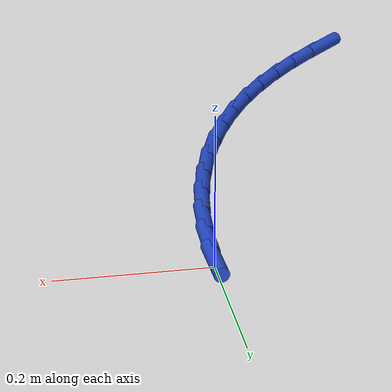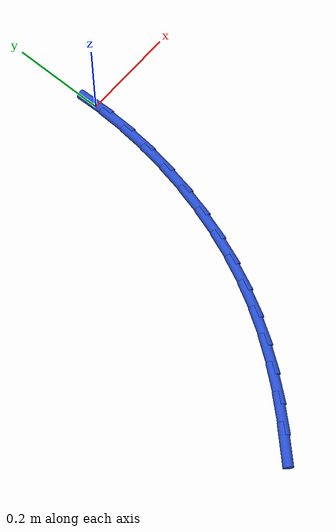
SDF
<sdf version="1.6">
 <world name="default">
  <model name="ground_plane">
   <static>1</static>
   <link name="link">
    <collision name="collision">
     <geometry><plane><normal>0 0 1</normal><size>100 100</size></plane></geometry>
     <surface><friction><ode><mu>100</mu><mu2>50</mu2></ode></friction></surface>
    </collision>
    <visual name="visual">
     <cast_shadows>0</cast_shadows>
     <geometry><plane><normal>0 0 1</normal><size>100 100</size></plane></geometry>
     <material>
      <script><uri>file://media/materials/scripts/gazebo.material</uri><name>Gazebo/WhiteGlow</name></script>
     </material>
    </visual>
   </link>
  </model>
  <model name="line">
   <link name="link_106">
    <pose>-0.3025415072813688 -0.7030018888482226 0.01 0 1.57 0.7783038461230508</pose>
    <collision name="collision">
     <geometry><cylinder><radius>0.01</radius><length>0.08</length></cylinder></geometry>
    </collision>
    <visual name="visual">
     <material>
      <script><name>Gazebo/Blue</name><uri>file://media/materials/scripts/gazebo.material</uri></script>
     </material>
     <geometry><cylinder><radius>0.01</radius><length>0.08</length></cylinder></geometry>
    </visual>
   </link>
   <link name="link_107">
    <pose>-0.26275647648580447 -0.6637773861546333 0.01 0 1.57 0.8249515135972789</pose>
    <collision name="collision">
     <geometry><cylinder><radius>0.01</radius><length>0.08</length></cylinder></geometry>
    </collision>
    <visual name="visual">
     <material>
      <script><name>Gazebo/Blue</name><uri>file://media/materials/scripts/gazebo.material</uri></script>
     </material>
     <geometry><cylinder><radius>0.01</radius><length>0.08</length></cylinder></geometry>
    </visual>
   </link>
   <link name="link_108">
    <pose>-0.22525142224436384 -0.6231815688212686 0.01 0 1.57 0.8782178409304919</pose>
    <collision name="collision">
     <geometry><cylinder><radius>0.01</radius><length>0.08</length></cylinder></geometry>
    </collision>
    <visual name="visual">
     <material>
      <script><name>Gazebo/Blue</name><uri>file://media/materials/scripts/gazebo.material</uri></script>
     </material>
     <geometry><cylinder><radius>0.01</radius><length>0.08</length></cylinder></geometry>
    </visual>
   </link>
   <link name="link_109">
    <pose>-0.19021328301969206 -0.5809506745769134 0.01 0 1.57 0.9377162922554216</pose>
    <collision name="collision">
     <geometry><cylinder><radius>0.01</radius><length>0.08</length></cylinder></geometry>
    </collision>
    <visual name="visual">
     <material>
      <script><name>Gazebo/Blue</name><uri>file://media/materials/scripts/gazebo.material</uri></script>
     </material>
     <geometry><cylinder><radius>0.01</radius><length>0.08</length></cylinder></geometry>
    </visual>
   </link>
   <link name="link_110">
    <pose>-0.1578289972744327 -0.536820941150351 0.01 0 1.57 1.0027552016437042</pose>
    <collision name="collision">
     <geometry><cylinder><radius>0.01</radius><length>0.08</length></cylinder></geometry>
    </collision>
    <visual name="visual">
     <material>
      <script><name>Gazebo/Blue</name><uri>file://media/materials/scripts/gazebo.material</uri></script>
     </material>
     <geometry><cylinder><radius>0.01</radius><length>0.08</length></cylinder></geometry>
    </visual>
   </link>
   <link name="link_111">
    <pose>-0.12828528510942996 -0.4905292998651439 0.01 0 1.57 1.070350867640532</pose>
    <collision name="collision">
     <geometry><cylinder><radius>0.01</radius><length>0.08</length></cylinder></geometry>
    </collision>
    <visual name="visual">
     <material>
      <script><name>Gazebo/Blue</name><uri>file://media/materials/scripts/gazebo.material</uri></script>
     </material>
     <geometry><cylinder><radius>0.01</radius><length>0.08</length></cylinder></geometry>
    </visual>
   </link>
   <link name="link_112">
    <pose>-0.10172291418235113 -0.44195864335645624 0.01 0 1.57 1.135631942062559</pose>
    <collision name="collision">
     <geometry><cylinder><radius>0.01</radius><length>0.08</length></cylinder></geometry>
    </collision>
    <visual name="visual">
     <material>
      <script><name>Gazebo/Blue</name><uri>file://media/materials/scripts/gazebo.material</uri></script>
     </material>
     <geometry><cylinder><radius>0.01</radius><length>0.08</length></cylinder></geometry>
    </visual>
   </link>
   <link name="link_113">
    <pose>-0.07818029277687868 -0.39131699405557974 0.01 0 1.57 1.1983015790903861</pose>
    <collision name="collision">
     <geometry><cylinder><radius>0.01</radius><length>0.08</length></cylinder></geometry>
    </collision>
    <visual name="visual">
     <material>
      <script><name>Gazebo/Blue</name><uri>file://media/materials/scripts/gazebo.material</uri></script>
     </material>
     <geometry><cylinder><radius>0.01</radius><length>0.08</length></cylinder></geometry>
    </visual>
   </link>
   <link name="link_114">
    <pose>-0.057682005065113 -0.3388562846914647 0.01 0 1.57 1.2587368469188251</pose>
    <collision name="collision">
     <geometry><cylinder><radius>0.01</radius><length>0.08</length></cylinder></geometry>
    </collision>
    <visual name="visual">
     <material>
      <script><name>Gazebo/Blue</name><uri>file://media/materials/scripts/gazebo.material</uri></script>
     </material>
     <geometry><cylinder><radius>0.01</radius><length>0.08</length></cylinder></geometry>
    </visual>
   </link>
   <link name="link_115">
    <pose>-0.040252635219154516 -0.28482844799306084 0.01 0 1.57 1.3173309260078687</pose>
    <collision name="collision">
     <geometry><cylinder><radius>0.01</radius><length>0.08</length></cylinder></geometry>
    </collision>
    <visual name="visual">
     <material>
      <script><name>Gazebo/Blue</name><uri>file://media/materials/scripts/gazebo.material</uri></script>
     </material>
     <geometry><cylinder><radius>0.01</radius><length>0.08</length></cylinder></geometry>
    </visual>
   </link>
   <link name="link_116">
    <pose>-0.025916767411104446 -0.2294854166893205 0.01 0 1.57 1.3744830717376164</pose>
    <collision name="collision">
     <geometry><cylinder><radius>0.01</radius><length>0.08</length></cylinder></geometry>
    </collision>
    <visual name="visual">
     <material>
      <script><name>Gazebo/Blue</name><uri>file://media/materials/scripts/gazebo.material</uri></script>
     </material>
     <geometry><cylinder><radius>0.01</radius><length>0.08</length></cylinder></geometry>
    </visual>
   </link>
   <link name="link_117">
    <pose>-0.014698985813063246 -0.17307912350919358 0.01 0 1.57 1.4305924825424408</pose>
    <collision name="collision">
     <geometry><cylinder><radius>0.01</radius><length>0.08</length></cylinder></geometry>
    </collision>
    <visual name="visual">
     <material>
      <script><name>Gazebo/Blue</name><uri>file://media/materials/scripts/gazebo.material</uri></script>
     </material>
     <geometry><cylinder><radius>0.01</radius><length>0.08</length></cylinder></geometry>
    </visual>
   </link>
   <link name="link_118">
    <pose>-0.00662387459713162 -0.11586150118163088 0.01 0 1.57 1.4860549675698875</pose>
    <collision name="collision">
     <geometry><cylinder><radius>0.01</radius><length>0.08</length></cylinder></geometry>
    </collision>
    <visual name="visual">
     <material>
      <script><name>Gazebo/Blue</name><uri>file://media/materials/scripts/gazebo.material</uri></script>
     </material>
     <geometry><cylinder><radius>0.01</radius><length>0.08</length></cylinder></geometry>
    </visual>
   </link>
   <link name="link_119">
    <pose>-0.001716017935410246 -0.05808448243558233 0.01 0 1.57 1.5412614343762072</pose>
    <collision name="collision">
     <geometry><cylinder><radius>0.01</radius><length>0.08</length></cylinder></geometry>
    </collision>
    <visual name="visual">
     <material>
      <script><name>Gazebo/Blue</name><uri>file://media/materials/scripts/gazebo.material</uri></script>
     </material>
     <geometry><cylinder><radius>0.01</radius><length>0.08</length></cylinder></geometry>
    </visual>
   </link>
   <link name="link_120">
    <pose>5.898059818321144e-17 -1.249000902703301e-16 0.01 0 1.57 -1.5449953005435735</pose>
    <collision name="collision">
     <geometry><cylinder><radius>0.01</radius><length>0.08</length></cylinder></geometry>
    </collision>
    <visual name="visual">
     <material>
      <script><name>Gazebo/Blue</name><uri>file://media/materials/scripts/gazebo.material</uri></script>
     </material>
     <geometry><cylinder><radius>0.01</radius><length>0.08</length></cylinder></geometry>
    </visual>
   </link>
  </model>
 </world>
</sdf>
